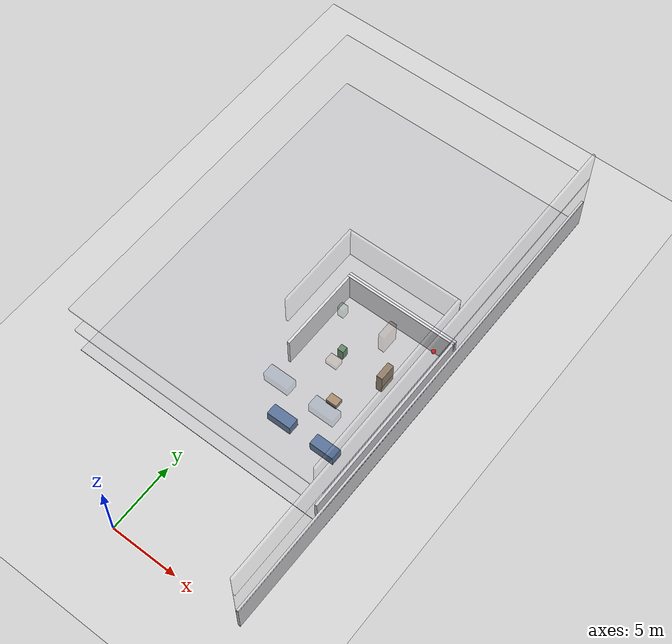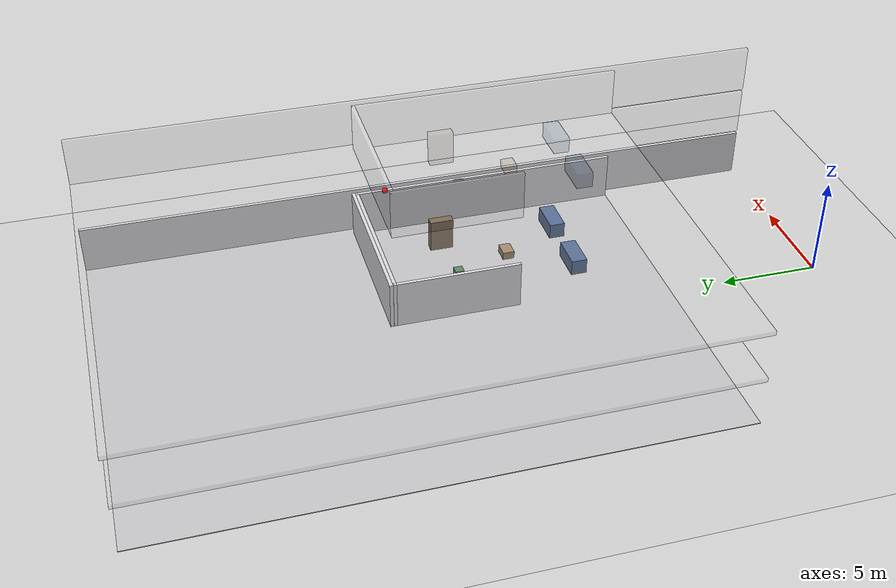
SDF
<sdf version="1.7">
 <world name="generated_world">
  <include><uri>model://sun</uri></include>
  <include><uri>model://ground_plane</uri></include>
  <model name="generated_building">
   <static>true</static>
   <link name="slab_floor_0_0">
    <pose>0.0000 21.9250 -0.1100 0.0000 0.0000 0.0000</pose>
    <collision name="slab_floor_0_0_collision">
     <geometry><box><size>20.0000 28.1500 0.2200</size></box></geometry>
    </collision>
    <visual name="slab_floor_0_0_visual">
     <geometry><box><size>20.0000 28.1500 0.2200</size></box></geometry>
     <material><ambient>0.76 0.76 0.77 1</ambient><diffuse>0.76 0.76 0.77 1</diffuse></material>
    </visual>
    <gravity>false</gravity>
   </link>
   <link name="exterior_east_floor_0">
    <pose>9.9100 18.0000 1.2250 0.0000 0.0000 0.0000</pose>
    <collision name="exterior_east_floor_0_collision">
     <geometry><box><size>0.1800 36.0000 2.4500</size></box></geometry>
    </collision>
    <visual name="exterior_east_floor_0_visual">
     <geometry><box><size>0.1800 36.0000 2.4500</size></box></geometry>
     <material><ambient>0.86 0.86 0.88 1</ambient><diffuse>0.86 0.86 0.88 1</diffuse></material>
    </visual>
    <gravity>false</gravity>
   </link>
   <link name="floor_0_room_1_corridor_wall_upper">
    <pose>1.1900 18.6725 1.2250 0.0000 0.0000 0.0000</pose>
    <collision name="floor_0_room_1_corridor_wall_upper_collision">
     <geometry><box><size>0.1800 6.4150 2.4500</size></box></geometry>
    </collision>
    <visual name="floor_0_room_1_corridor_wall_upper_visual">
     <geometry><box><size>0.1800 6.4150 2.4500</size></box></geometry>
     <material><ambient>0.86 0.86 0.88 1</ambient><diffuse>0.86 0.86 0.88 1</diffuse></material>
    </visual>
    <gravity>false</gravity>
   </link>
   <link name="floor_0_room_1_east_wall">
    <pose>9.4100 14.8650 1.2250 0.0000 0.0000 0.0000</pose>
    <collision name="floor_0_room_1_east_wall_collision">
     <geometry><box><size>0.1800 14.0300 2.4500</size></box></geometry>
    </collision>
    <visual name="floor_0_room_1_east_wall_visual">
     <geometry><box><size>0.1800 14.0300 2.4500</size></box></geometry>
     <material><ambient>0.86 0.86 0.88 1</ambient><diffuse>0.86 0.86 0.88 1</diffuse></material>
    </visual>
    <gravity>false</gravity>
   </link>
   <link name="floor_0_room_1_north_wall">
    <pose>5.3000 21.7900 1.2250 0.0000 0.0000 0.0000</pose>
    <collision name="floor_0_room_1_north_wall_collision">
     <geometry><box><size>8.4000 0.1800 2.4500</size></box></geometry>
    </collision>
    <visual name="floor_0_room_1_north_wall_visual">
     <geometry><box><size>8.4000 0.1800 2.4500</size></box></geometry>
     <material><ambient>0.86 0.86 0.88 1</ambient><diffuse>0.86 0.86 0.88 1</diffuse></material>
    </visual>
    <gravity>false</gravity>
   </link>
   <link name="floor_0_room_3_south_wall">
    <pose>5.3000 21.9700 1.2250 0.0000 0.0000 0.0000</pose>
    <collision name="floor_0_room_3_south_wall_collision">
     <geometry><box><size>8.4000 0.1800 2.4500</size></box></geometry>
    </collision>
    <visual name="floor_0_room_3_south_wall_visual">
     <geometry><box><size>8.4000 0.1800 2.4500</size></box></geometry>
     <material><ambient>0.86 0.86 0.88 1</ambient><diffuse>0.86 0.86 0.88 1</diffuse></material>
    </visual>
    <gravity>false</gravity>
   </link>
   <link name="floor_0_room_1_sofa_a">
    <pose>3.6000 11.8075 0.4500 0.0000 0.0000 0.0000</pose>
    <collision name="floor_0_room_1_sofa_a_collision">
     <geometry><box><size>1.8000 0.8000 0.8000</size></box></geometry>
    </collision>
    <visual name="floor_0_room_1_sofa_a_visual">
     <geometry><box><size>1.8000 0.8000 0.8000</size></box></geometry>
     <material><ambient>0.24 0.36 0.54 1</ambient><diffuse>0.24 0.36 0.54 1</diffuse></material>
    </visual>
    <gravity>false</gravity>
   </link>
   <link name="floor_0_room_1_sofa_b">
    <pose>7.0000 11.8075 0.4500 0.0000 0.0000 3.1400</pose>
    <collision name="floor_0_room_1_sofa_b_collision">
     <geometry><box><size>1.8000 0.8000 0.8000</size></box></geometry>
    </collision>
    <visual name="floor_0_room_1_sofa_b_visual">
     <geometry><box><size>1.8000 0.8000 0.8000</size></box></geometry>
     <material><ambient>0.24 0.36 0.54 1</ambient><diffuse>0.24 0.36 0.54 1</diffuse></material>
    </visual>
    <gravity>false</gravity>
   </link>
   <link name="floor_0_room_1_coffee_table">
    <pose>5.3000 14.8650 0.2500 0.0000 0.0000 0.0000</pose>
    <collision name="floor_0_room_1_coffee_table_collision">
     <geometry><box><size>0.8000 0.6000 0.4000</size></box></geometry>
    </collision>
    <visual name="floor_0_room_1_coffee_table_visual">
     <geometry><box><size>0.8000 0.6000 0.4000</size></box></geometry>
     <material><ambient>0.60 0.48 0.34 1</ambient><diffuse>0.60 0.48 0.34 1</diffuse></material>
    </visual>
    <gravity>false</gravity>
   </link>
   <link name="floor_0_room_1_bookshelf">
    <pose>7.0000 17.9225 0.8500 0.0000 0.0000 0.0000</pose>
    <collision name="floor_0_room_1_bookshelf_collision">
     <geometry><box><size>0.4500 1.2000 1.7000</size></box></geometry>
    </collision>
    <visual name="floor_0_room_1_bookshelf_visual">
     <geometry><box><size>0.4500 1.2000 1.7000</size></box></geometry>
     <material><ambient>0.50 0.40 0.30 1</ambient><diffuse>0.50 0.40 0.30 1</diffuse></material>
    </visual>
    <gravity>false</gravity>
   </link>
   <link name="floor_0_room_1_planter">
    <pose>3.6000 17.9225 0.4500 0.0000 0.0000 0.0000</pose>
    <collision name="floor_0_room_1_planter_collision">
     <geometry><box><size>0.4500 0.4500 0.9000</size></box></geometry>
    </collision>
    <visual name="floor_0_room_1_planter_visual">
     <geometry><box><size>0.4500 0.4500 0.9000</size></box></geometry>
     <material><ambient>0.28 0.46 0.30 1</ambient><diffuse>0.28 0.46 0.30 1</diffuse></material>
    </visual>
    <gravity>false</gravity>
   </link>
   <link name="slab_floor_1_0">
    <pose>0.0000 21.9250 2.4900 0.0000 0.0000 0.0000</pose>
    <collision name="slab_floor_1_0_collision">
     <geometry><box><size>20.0000 28.1500 0.2200</size></box></geometry>
    </collision>
    <visual name="slab_floor_1_0_visual">
     <geometry><box><size>20.0000 28.1500 0.2200</size></box></geometry>
     <material><ambient>0.76 0.76 0.77 1</ambient><diffuse>0.76 0.76 0.77 1</diffuse></material>
     <transparency>0.80</transparency>
    </visual>
    <gravity>false</gravity>
   </link>
   <link name="exterior_east_floor_1">
    <pose>9.9100 18.0000 3.8250 0.0000 0.0000 0.0000</pose>
    <collision name="exterior_east_floor_1_collision">
     <geometry><box><size>0.1800 36.0000 2.4500</size></box></geometry>
    </collision>
    <visual name="exterior_east_floor_1_visual">
     <geometry><box><size>0.1800 36.0000 2.4500</size></box></geometry>
     <material><ambient>0.86 0.86 0.88 1</ambient><diffuse>0.86 0.86 0.88 1</diffuse></material>
     <transparency>0.80</transparency>
    </visual>
    <gravity>false</gravity>
   </link>
   <link name="floor_1_room_1_corridor_wall_upper">
    <pose>1.1900 18.6725 3.8250 0.0000 0.0000 0.0000</pose>
    <collision name="floor_1_room_1_corridor_wall_upper_collision">
     <geometry><box><size>0.1800 6.4150 2.4500</size></box></geometry>
    </collision>
    <visual name="floor_1_room_1_corridor_wall_upper_visual">
     <geometry><box><size>0.1800 6.4150 2.4500</size></box></geometry>
     <material><ambient>0.86 0.86 0.88 1</ambient><diffuse>0.86 0.86 0.88 1</diffuse></material>
     <transparency>0.80</transparency>
    </visual>
    <gravity>false</gravity>
   </link>
   <link name="floor_1_room_1_east_wall">
    <pose>9.4100 14.8650 3.8250 0.0000 0.0000 0.0000</pose>
    <collision name="floor_1_room_1_east_wall_collision">
     <geometry><box><size>0.1800 14.0300 2.4500</size></box></geometry>
    </collision>
    <visual name="floor_1_room_1_east_wall_visual">
     <geometry><box><size>0.1800 14.0300 2.4500</size></box></geometry>
     <material><ambient>0.86 0.86 0.88 1</ambient><diffuse>0.86 0.86 0.88 1</diffuse></material>
     <transparency>0.80</transparency>
    </visual>
    <gravity>false</gravity>
   </link>
   <link name="floor_1_room_1_north_wall">
    <pose>5.3000 21.7900 3.8250 0.0000 0.0000 0.0000</pose>
    <collision name="floor_1_room_1_north_wall_collision">
     <geometry><box><size>8.4000 0.1800 2.4500</size></box></geometry>
    </collision>
    <visual name="floor_1_room_1_north_wall_visual">
     <geometry><box><size>8.4000 0.1800 2.4500</size></box></geometry>
     <material><ambient>0.86 0.86 0.88 1</ambient><diffuse>0.86 0.86 0.88 1</diffuse></material>
     <transparency>0.80</transparency>
    </visual>
    <gravity>false</gravity>
   </link>
   <link name="floor_1_room_3_south_wall">
    <pose>5.3000 21.9700 3.8250 0.0000 0.0000 0.0000</pose>
    <collision name="floor_1_room_3_south_wall_collision">
     <geometry><box><size>8.4000 0.1800 2.4500</size></box></geometry>
    </collision>
    <visual name="floor_1_room_3_south_wall_visual">
     <geometry><box><size>8.4000 0.1800 2.4500</size></box></geometry>
     <material><ambient>0.86 0.86 0.88 1</ambient><diffuse>0.86 0.86 0.88 1</diffuse></material>
     <transparency>0.80</transparency>
    </visual>
    <gravity>false</gravity>
   </link>
   <link name="floor_1_room_1_table">
    <pose>5.3000 14.8650 3.0500 0.0000 0.0000 0.0000</pose>
    <collision name="floor_1_room_1_table_collision">
     <geometry><box><size>2.2000 1.0000 0.7500</size></box></geometry>
    </collision>
    <visual name="floor_1_room_1_table_visual">
     <geometry><box><size>2.2000 1.0000 0.7500</size></box></geometry>
     <material><ambient>0.50 0.38 0.28 1</ambient><diffuse>0.50 0.38 0.28 1</diffuse></material>
     <transparency>0.80</transparency>
    </visual>
    <gravity>false</gravity>
   </link>
   <link name="floor_1_room_1_chair_north">
    <pose>5.3000 17.9225 2.8800 0.0000 0.0000 0.0000</pose>
    <collision name="floor_1_room_1_chair_north_collision">
     <geometry><box><size>0.5000 0.5000 0.5500</size></box></geometry>
    </collision>
    <visual name="floor_1_room_1_chair_north_visual">
     <geometry><box><size>0.5000 0.5000 0.5500</size></box></geometry>
     <material><ambient>0.30 0.30 0.34 1</ambient><diffuse>0.30 0.30 0.34 1</diffuse></material>
     <transparency>0.80</transparency>
    </visual>
    <gravity>false</gravity>
   </link>
   <link name="floor_1_room_1_chair_south">
    <pose>5.3000 11.8075 2.8800 0.0000 0.0000 0.0000</pose>
    <collision name="floor_1_room_1_chair_south_collision">
     <geometry><box><size>0.5000 0.5000 0.5500</size></box></geometry>
    </collision>
    <visual name="floor_1_room_1_chair_south_visual">
     <geometry><box><size>0.5000 0.5000 0.5500</size></box></geometry>
     <material><ambient>0.30 0.30 0.34 1</ambient><diffuse>0.30 0.30 0.34 1</diffuse></material>
     <transparency>0.80</transparency>
    </visual>
    <gravity>false</gravity>
   </link>
   <link name="floor_1_room_1_chair_west">
    <pose>3.1500 14.8650 2.8800 0.0000 0.0000 1.5700</pose>
    <collision name="floor_1_room_1_chair_west_collision">
     <geometry><box><size>0.5000 0.5000 0.5500</size></box></geometry>
    </collision>
    <visual name="floor_1_room_1_chair_west_visual">
     <geometry><box><size>0.5000 0.5000 0.5500</size></box></geometry>
     <material><ambient>0.30 0.30 0.34 1</ambient><diffuse>0.30 0.30 0.34 1</diffuse></material>
     <transparency>0.80</transparency>
    </visual>
    <gravity>false</gravity>
   </link>
   <link name="floor_1_room_1_chair_east">
    <pose>7.4500 14.8650 2.8800 0.0000 0.0000 1.5700</pose>
    <collision name="floor_1_room_1_chair_east_collision">
     <geometry><box><size>0.5000 0.5000 0.5500</size></box></geometry>
    </collision>
    <visual name="floor_1_room_1_chair_east_visual">
     <geometry><box><size>0.5000 0.5000 0.5500</size></box></geometry>
     <material><ambient>0.30 0.30 0.34 1</ambient><diffuse>0.30 0.30 0.34 1</diffuse></material>
     <transparency>0.80</transparency>
    </visual>
    <gravity>false</gravity>
   </link>
   <link name="floor_1_room_1_credenza">
    <pose>7.0000 11.8075 3.0500 0.0000 0.0000 0.0000</pose>
    <collision name="floor_1_room_1_credenza_collision">
     <geometry><box><size>1.2000 0.4500 0.9000</size></box></geometry>
    </collision>
    <visual name="floor_1_room_1_credenza_visual">
     <geometry><box><size>1.2000 0.4500 0.9000</size></box></geometry>
     <material><ambient>0.72 0.72 0.74 1</ambient><diffuse>0.72 0.72 0.74 1</diffuse></material>
     <transparency>0.80</transparency>
    </visual>
    <gravity>false</gravity>
   </link>
   <link name="slab_floor_2_0">
    <pose>0.0000 21.9250 5.0900 0.0000 0.0000 0.0000</pose>
    <collision name="slab_floor_2_0_collision">
     <geometry><box><size>20.0000 28.1500 0.2200</size></box></geometry>
    </collision>
    <visual name="slab_floor_2_0_visual">
     <geometry><box><size>20.0000 28.1500 0.2200</size></box></geometry>
     <material><ambient>0.76 0.76 0.77 1</ambient><diffuse>0.76 0.76 0.77 1</diffuse></material>
     <transparency>0.80</transparency>
    </visual>
    <gravity>false</gravity>
   </link>
   <link name="exterior_east_floor_2">
    <pose>9.9100 18.0000 6.4250 0.0000 0.0000 0.0000</pose>
    <collision name="exterior_east_floor_2_collision">
     <geometry><box><size>0.1800 36.0000 2.4500</size></box></geometry>
    </collision>
    <visual name="exterior_east_floor_2_visual">
     <geometry><box><size>0.1800 36.0000 2.4500</size></box></geometry>
     <material><ambient>0.86 0.86 0.88 1</ambient><diffuse>0.86 0.86 0.88 1</diffuse></material>
     <transparency>0.80</transparency>
    </visual>
    <gravity>false</gravity>
   </link>
   <link name="floor_2_room_1_corridor_wall_upper">
    <pose>1.1900 18.6725 6.4250 0.0000 0.0000 0.0000</pose>
    <collision name="floor_2_room_1_corridor_wall_upper_collision">
     <geometry><box><size>0.1800 6.4150 2.4500</size></box></geometry>
    </collision>
    <visual name="floor_2_room_1_corridor_wall_upper_visual">
     <geometry><box><size>0.1800 6.4150 2.4500</size></box></geometry>
     <material><ambient>0.86 0.86 0.88 1</ambient><diffuse>0.86 0.86 0.88 1</diffuse></material>
     <transparency>0.80</transparency>
    </visual>
    <gravity>false</gravity>
   </link>
   <link name="floor_2_room_1_east_wall">
    <pose>9.4100 14.8650 6.4250 0.0000 0.0000 0.0000</pose>
    <collision name="floor_2_room_1_east_wall_collision">
     <geometry><box><size>0.1800 14.0300 2.4500</size></box></geometry>
    </collision>
    <visual name="floor_2_room_1_east_wall_visual">
     <geometry><box><size>0.1800 14.0300 2.4500</size></box></geometry>
     <material><ambient>0.86 0.86 0.88 1</ambient><diffuse>0.86 0.86 0.88 1</diffuse></material>
     <transparency>0.80</transparency>
    </visual>
    <gravity>false</gravity>
   </link>
   <link name="floor_2_room_1_north_wall">
    <pose>5.3000 21.7900 6.4250 0.0000 0.0000 0.0000</pose>
    <collision name="floor_2_room_1_north_wall_collision">
     <geometry><box><size>8.4000 0.1800 2.4500</size></box></geometry>
    </collision>
    <visual name="floor_2_room_1_north_wall_visual">
     <geometry><box><size>8.4000 0.1800 2.4500</size></box></geometry>
     <material><ambient>0.86 0.86 0.88 1</ambient><diffuse>0.86 0.86 0.88 1</diffuse></material>
     <transparency>0.80</transparency>
    </visual>
    <gravity>false</gravity>
   </link>
   <link name="floor_2_room_1_sofa_a">
    <pose>3.6000 11.8075 5.6500 0.0000 0.0000 0.0000</pose>
    <collision name="floor_2_room_1_sofa_a_collision">
     <geometry><box><size>1.8000 0.8000 0.8000</size></box></geometry>
    </collision>
    <visual name="floor_2_room_1_sofa_a_visual">
     <geometry><box><size>1.8000 0.8000 0.8000</size></box></geometry>
     <material><ambient>0.24 0.36 0.54 1</ambient><diffuse>0.24 0.36 0.54 1</diffuse></material>
     <transparency>0.80</transparency>
    </visual>
    <gravity>false</gravity>
   </link>
   <link name="floor_2_room_1_sofa_b">
    <pose>7.0000 11.8075 5.6500 0.0000 0.0000 3.1400</pose>
    <collision name="floor_2_room_1_sofa_b_collision">
     <geometry><box><size>1.8000 0.8000 0.8000</size></box></geometry>
    </collision>
    <visual name="floor_2_room_1_sofa_b_visual">
     <geometry><box><size>1.8000 0.8000 0.8000</size></box></geometry>
     <material><ambient>0.24 0.36 0.54 1</ambient><diffuse>0.24 0.36 0.54 1</diffuse></material>
     <transparency>0.80</transparency>
    </visual>
    <gravity>false</gravity>
   </link>
   <link name="floor_2_room_1_coffee_table">
    <pose>5.3000 14.8650 5.4500 0.0000 0.0000 0.0000</pose>
    <collision name="floor_2_room_1_coffee_table_collision">
     <geometry><box><size>0.8000 0.6000 0.4000</size></box></geometry>
    </collision>
    <visual name="floor_2_room_1_coffee_table_visual">
     <geometry><box><size>0.8000 0.6000 0.4000</size></box></geometry>
     <material><ambient>0.60 0.48 0.34 1</ambient><diffuse>0.60 0.48 0.34 1</diffuse></material>
     <transparency>0.80</transparency>
    </visual>
    <gravity>false</gravity>
   </link>
   <link name="floor_2_room_1_bookshelf">
    <pose>7.0000 17.9225 6.0500 0.0000 0.0000 0.0000</pose>
    <collision name="floor_2_room_1_bookshelf_collision">
     <geometry><box><size>0.4500 1.2000 1.7000</size></box></geometry>
    </collision>
    <visual name="floor_2_room_1_bookshelf_visual">
     <geometry><box><size>0.4500 1.2000 1.7000</size></box></geometry>
     <material><ambient>0.50 0.40 0.30 1</ambient><diffuse>0.50 0.40 0.30 1</diffuse></material>
     <transparency>0.80</transparency>
    </visual>
    <gravity>false</gravity>
   </link>
   <link name="floor_2_room_1_planter">
    <pose>3.6000 17.9225 5.6500 0.0000 0.0000 0.0000</pose>
    <collision name="floor_2_room_1_planter_collision">
     <geometry><box><size>0.4500 0.4500 0.9000</size></box></geometry>
    </collision>
    <visual name="floor_2_room_1_planter_visual">
     <geometry><box><size>0.4500 0.4500 0.9000</size></box></geometry>
     <material><ambient>0.28 0.46 0.30 1</ambient><diffuse>0.28 0.46 0.30 1</diffuse></material>
     <transparency>0.80</transparency>
    </visual>
    <gravity>false</gravity>
   </link>
  </model>
  <model name="danger_red_sphere_00">
   <static>true</static>
   <pose>8.878986 20.411930 2.750000 0.000000 0.000000 0.000000</pose>
   <link name="link">
    <collision name="collision"><geometry><sphere><radius>0.150</radius></sphere></geometry></collision>
    <visual name="visual">
     <geometry><sphere><radius>0.150</radius></sphere></geometry>
     <material><ambient>1.0 0.0 0.0 1.0</ambient><diffuse>1.0 0.0 0.0 1.0</diffuse></material>
    </visual>
   </link>
  </model>
 </world>
</sdf>
